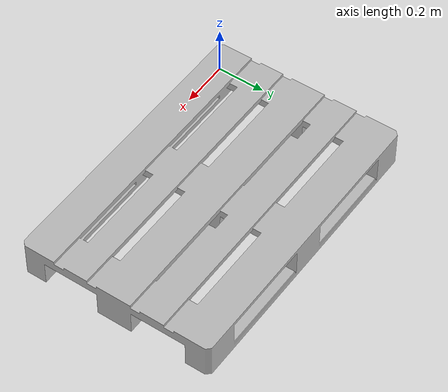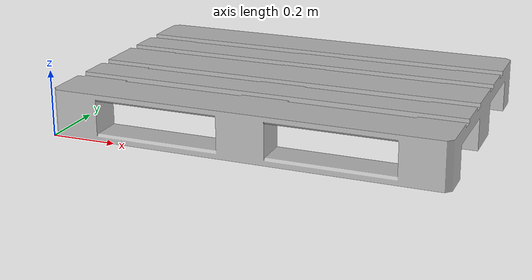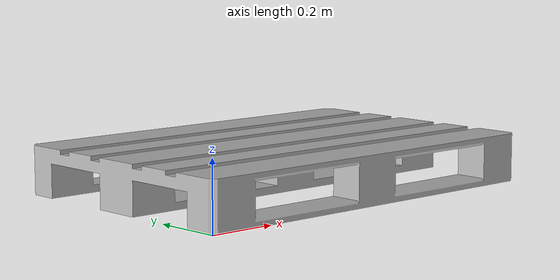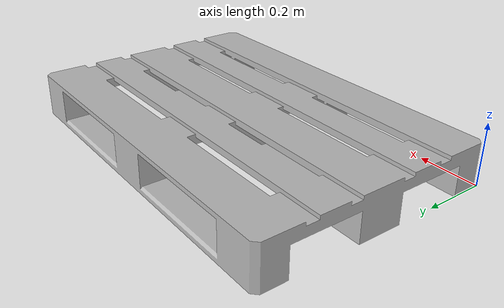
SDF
<sdf version="1.9">
<model name="eur_pallet" canonical_link="node0_link">
  <link name="node0_link">
    <visual name="node0">
      <pose>0 0 0 0 0 0</pose>
      <geometry>
        <mesh>
          <uri>model://eur_pallet/meshes/textured_pallet.dae</uri>
          <scale>1.00000 1.00000 1.00000</scale>
        </mesh>
      </geometry>
    </visual>
  </link>

  <link name="collision_holder_1">
    <inertial>
      <inertia>
        <ixx>0.006</ixx>
        <ixy>0</ixy>
        <ixz>0</ixz>
        <iyy>0.435</iyy>
        <iyz>0</iyz>
        <izz>0.435</izz>
      </inertia>
      <pose>0.6 0.05 0.05 0 0 0</pose>
      <mass>3.6</mass>
    </inertial>
    <collision name="collision_holder_1">
      <pose>0.6 0.05 0.05 0.0 0.0 0.0</pose>
      <geometry>
        <box>
          <size>1.2 0.1 0.1</size>
        </box>
      </geometry>
      <surface>
      <friction>
        <ode>
          <mu>1</mu>
          <mu2>1</mu2>
          <slip1>0</slip1>
          <slip2>0</slip2>
        </ode>
      </friction>
      <contact>
        <ode>
          <soft_cfm>1e-5</soft_cfm>
          <soft_erp>0.2</soft_erp>
          <kp>1e+13</kp>
          <kd>1</kd>
          <max_vel>0.01</max_vel>
          <min_depth>0</min_depth>
        </ode>
      </contact>
      </surface>
    </collision>
  </link>

  <link name="collision_holder_2">
    <inertial>
      <inertia>
        <ixx>0.013496</ixx>
        <ixy>0</ixy>
        <ixz>0</ixz>
        <iyy>0.6308</iyy>
        <iyz>0</iyz>
        <izz>0.6355</izz>
      </inertia>
      <pose>0.6 0.4 0.05 0 0 0</pose>
      <mass>5.22</mass>
    </inertial>
    <collision name="collision_holder_2">
      <pose>0.6 0.4 0.05 0 0 0</pose>
      <geometry>
        <box>
          <size>1.2 0.145 0.1</size>
        </box>
      </geometry>
      <surface>
      <friction>
        <ode>
          <mu>1</mu>
          <mu2>1</mu2>
          <slip1>0</slip1>
          <slip2>0</slip2>
        </ode>
      </friction>
      <contact>
        <ode>
          <soft_cfm>1e-5</soft_cfm>
          <soft_erp>0.2</soft_erp>
          <kp>1e+13</kp>
          <kd>1</kd>
          <max_vel>0.01</max_vel>
          <min_depth>0</min_depth>
        </ode>
      </contact>
      </surface>

    </collision>
  </link>

  <link name="collision_holder_3">
    <inertial>
      <inertia>
        <ixx>0.006</ixx>
        <ixy>0</ixy>
        <ixz>0</ixz>
        <iyy>0.435</iyy>
        <iyz>0</iyz>
        <izz>0.435</izz>
      </inertia>
      <pose>0.6 0.75 0.05 0 0 0</pose>
      <mass>3.6</mass>
    </inertial>
    <collision name="collision_holder_3">
      <pose>0.6 0.75 0.05 0 0 0</pose>
      <geometry>
        <box>
          <size>1.2 0.1 0.1</size>
        </box>
      </geometry>
      <surface>
      <friction>
        <ode>
          <mu>1</mu>
          <mu2>1</mu2>
          <slip1>0</slip1>
          <slip2>0</slip2>
        </ode>
      </friction>
      <contact>
        <ode>
          <soft_cfm>1e-5</soft_cfm>
          <soft_erp>0.2</soft_erp>
          <kp>1e+13</kp>
          <kd>1</kd>
          <max_vel>0.01</max_vel>
          <min_depth>0</min_depth>
        </ode>
      </contact>
      </surface>

    </collision>
  </link>

  <link name="collision_holder_surface">
    <inertial>
      <inertia>
        <ixx>0.6779</ixx>
        <ixy>0</ixy>
        <ixz>0</ixz>
        <iyy>1.5227</iyy>
        <iyz>0</iyz>
        <izz>2.1965</izz>
      </inertia>
      <pose>0.6 0.4 0.122 0 0 0</pose>
      <mass>12.672</mass>
    </inertial>
    <collision name="collision_holder_surface">
      <pose>0.6 0.4 0.122 0 0 0</pose>
      <geometry>
        <box>
          <size>1.2 0.8 0.044</size>
        </box>
      </geometry>
      <surface>
      <friction>
        <ode>
          <mu>1</mu>
          <mu2>1</mu2>
          <slip1>0</slip1>
          <slip2>0</slip2>
        </ode>
      </friction>
      <contact>
        <ode>
          <soft_cfm>1e-5</soft_cfm>
          <soft_erp>0.2</soft_erp>
          <kp>1e+13</kp>
          <kd>1</kd>
          <max_vel>0.01</max_vel>
          <min_depth>0</min_depth>
        </ode>
      </contact>
      </surface>

    </collision>
  </link>

  <joint name="fixed_joint_2" type="fixed">
    <parent>node0_link</parent>
    <child>collision_holder_2</child>
  </joint>

  <joint name="fixed_joint_3" type="fixed">
    <parent>node0_link</parent>
    <child>collision_holder_3</child>
  </joint>

  <joint name="fixed_joint_1" type="fixed">
    <parent>node0_link</parent>
    <child>collision_holder_1</child>
  </joint>

  <joint name="fixed_joint_surface" type="fixed">
    <parent>node0_link</parent>
    <child>collision_holder_surface</child>
  </joint>

  <plugin filename="gz-sim-label-system" name="gz::sim::systems::Label">
    <label>3</label>
  </plugin>

</model>
</sdf>
